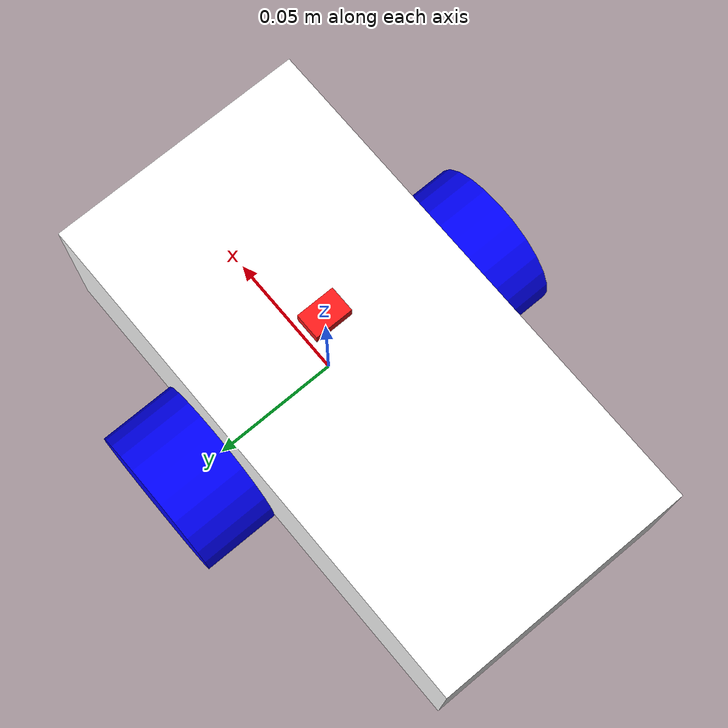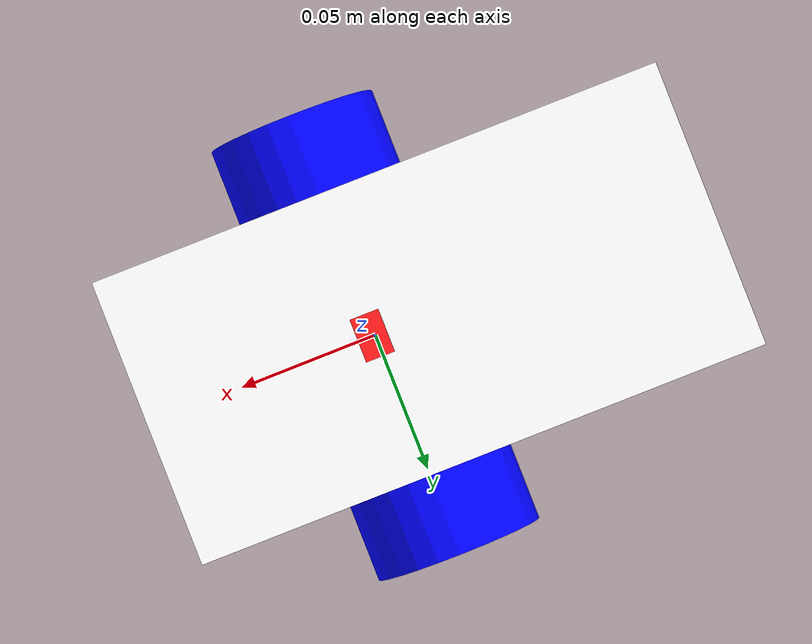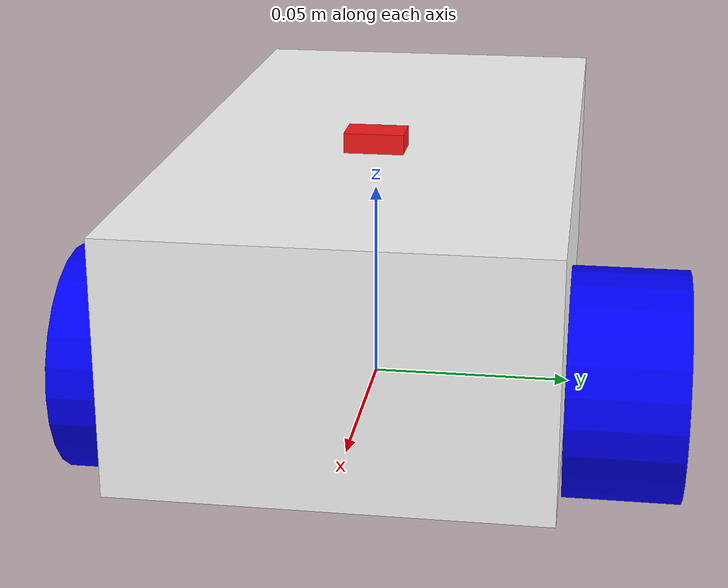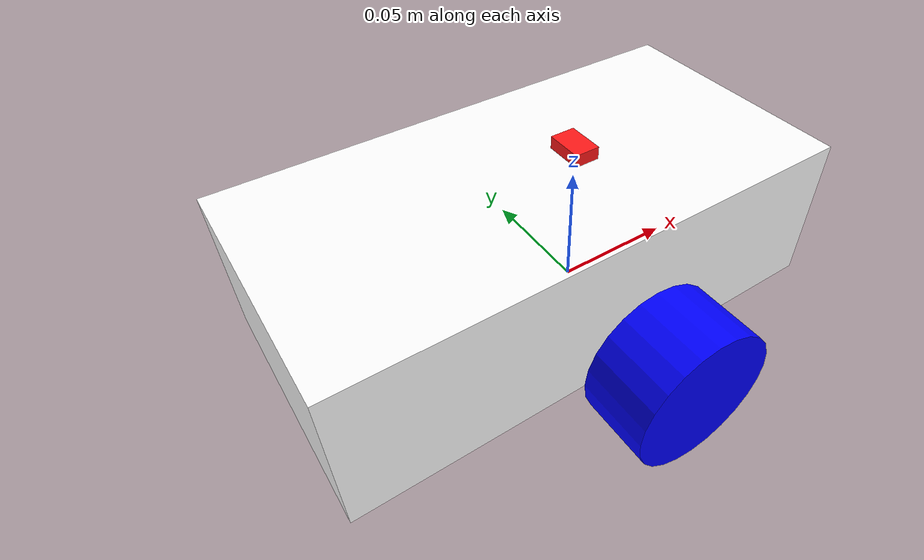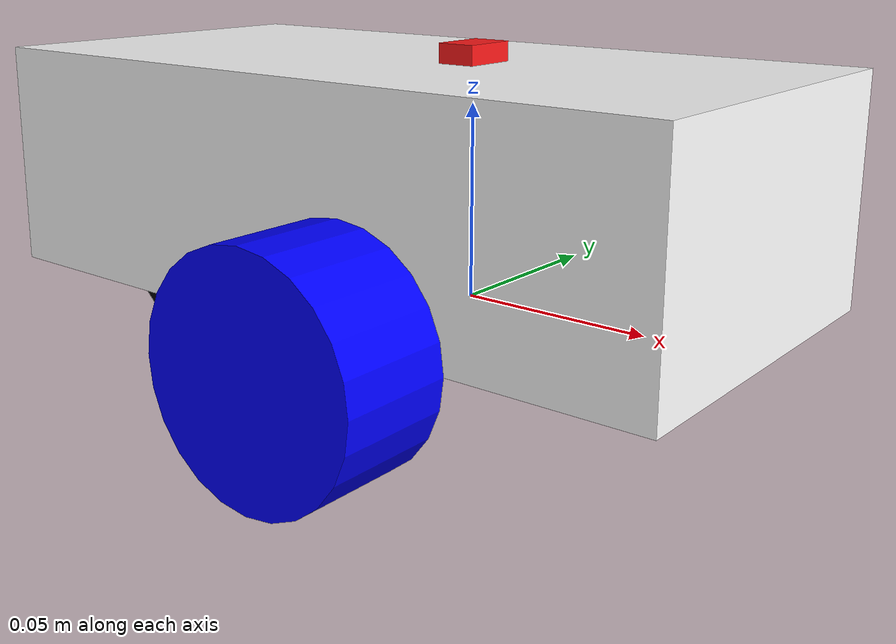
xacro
<?xml version="1.0"?>
<robot xmlns:xacro="http://www.ros.org/wiki/xacro" name="robot">

    <!-- MACROS -->
    <xacro:include filename="inertial_macros.xacro"/>

    <!-- COLOR -->
    <material name="white">
        <color rgba="1 1 1 1" />
    </material>

    <material name="red">
        <color rgba="1 0.1 0.1 1"/>
    </material>

    <material name="blue">
        <color rgba="0 0 1 1"/>
    </material>

    <material name="black">
        <color rgba="0 0 0 1"/>
    </material>

    <!-- BASE LINK -->
    <link name="base_link">
    </link>

    <!-- BODY LINK -->
    <joint name="body_joint" type="fixed">
        <parent link="base_link"/>
        <child link="body"/>
        <origin xyz="-0.12 0 0"/>
    </joint>

    <link name="body">
        <visual>
            <origin xyz="0.1 0 0.03"/>
            <geometry>
                <box size="0.2 0.1 0.06"/>
            </geometry>
            <material name="white"/>
        </visual>
        <collision>
            <origin xyz="0.1 0 0.03"/>
            <geometry>
                <box size="0.2 0.1 0.06"/>
            </geometry>
        </collision>
        <xacro:inertial_box mass="0.5" x="0.2" y="0.1" z="0.06">
            <origin xyz="0.1 0 0.03" rpy="0 0 0"/>
        </xacro:inertial_box>
    </link>

    <gazebo reference="body">
        <material>Gazebo/White</material>
    </gazebo>

    <!-- LEFT WHEEL LINK -->
    <joint name="left_wheel_joint" type="continuous">
        <parent link="base_link"/>
        <child link="left_wheel"/>
        <origin xyz="0 0.065 0" rpy="-${pi/2} 0 0" />
        <axis xyz="0 0 1"/>
    </joint>

    <link name="left_wheel">
        <visual>
            <geometry>
                <cylinder radius="0.03" length="0.03"/>
            </geometry>
            <material name="blue"/>
        </visual>
        <collision>
            <geometry>
                <cylinder radius="0.03" length="0.03"/>
            </geometry>
        </collision>
        <xacro:inertial_cylinder mass="0.1" length="0.03" radius="0.03">
            <origin xyz="0 0 0" rpy="0 0 0"/>
        </xacro:inertial_cylinder>
    </link>

    <gazebo reference="left_wheel">
        <material>Gazebo/Blue</material>
    </gazebo>

    <!-- RIGHT WHEEL LINK -->
    <joint name="right_wheel_joint" type="continuous">
        <parent link="base_link"/>
        <child link="right_wheel"/>
        <origin xyz="0 -0.065 0" rpy="${pi/2} 0 0" />
        <axis xyz="0 0 -1"/>
    </joint>

    <link name="right_wheel">
        <visual>
            <geometry>
                <cylinder radius="0.03" length="0.03"/>
            </geometry>
            <material name="blue"/>
        </visual>
        <collision>
            <geometry>
                <cylinder radius="0.03" length="0.03"/>
            </geometry>
        </collision>
        <xacro:inertial_cylinder mass="0.1" length="0.03" radius="0.03">
            <origin xyz="0 0 0" rpy="0 0 0"/>
        </xacro:inertial_cylinder>
    </link>

    <gazebo reference="right_wheel">
        <material>Gazebo/Blue</material>
    </gazebo>

    <!-- IMU -->
    <joint name='imu_joint' type='fixed'>
        <parent link="base_link"/>
        <child link='imu_link'/>
        <origin xyz='0 0 0.0625' rpy='0 0 0'/>
        <axis xyz='0 0 0'/>
    </joint>
    <link name='imu_link'>
        <visual>
            <origin xyz="0 0 0" rpy="0 0 0"/>
            <geometry>
                <box size='0.01 0.015 0.005'/>
            </geometry>
            <material name='red'/>
        </visual>

        <collision>
            <origin xyz='0 0 0' rpy='0 0 0'/>
            <geometry>
                <box size='0.01 0.015 0.005'/>
            </geometry>
        </collision>
        <xacro:inertial_box mass="0.1" x="0.01" y="0.015" z="0.005">
            <origin xyz="0 0 0.0625" rpy="0 0 0"/>
        </xacro:inertial_box>
    </link>

    <gazebo reference='imu_link'>
        <material>Gazebo/Red</material>
    </gazebo>

    <!-- CASTER WHEEL LINK -->
    <joint name="caster_wheel_joint" type="fixed">
        <parent link="body"/>
        <child link="caster_wheel"/>
        <origin xyz="0.03 0 0"/>
    </joint>

    <link name="caster_wheel">
        <visual>
            <geometry>
                <sphere radius="0.03"/>
            </geometry>
            <material name="black"/>
        </visual>
        <collision>
            <geometry>
                <sphere radius="0.03"/>
            </geometry>
        </collision>
        <xacro:inertial_sphere mass="0.1" radius="0.03">
            <origin xyz="0 0 0" rpy="0 0 0"/>
        </xacro:inertial_sphere>
    </link>

    <gazebo reference="caster_wheel">
        <material>Gazebo/Black</material>

        <!-- Frictionless -->
        <mu1 value="0.001"/>
        <mu2 value="0.001"/>
    </gazebo>

    <!-- Gazebo Diff drive -->
    <xacro:include filename="gazebo_control.xacro"/>

</robot>
